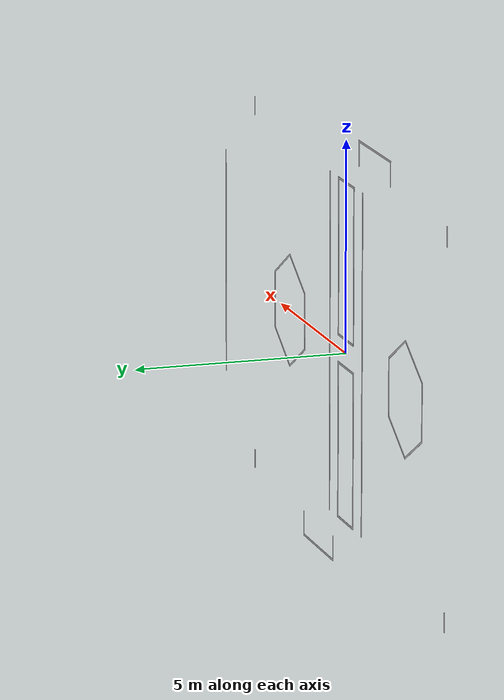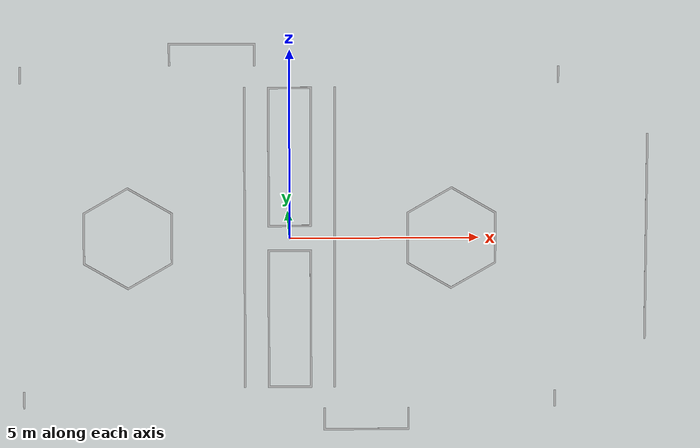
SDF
<?xml version="1.0" encoding="utf-8"?>
<sdf version="1.5">
  <model name="Carpet">
    <pose>0 0 0 0 0 0</pose>
    <link name="Rugs">
      <gravity>1</gravity>
      <self_collide>0</self_collide>
      <pose>0 -0.00231262304582918 3.61551875598679E-05 0 0 0</pose>
      <must_be_base_link>1</must_be_base_link>
      <velocity_decay>
        <linear>0</linear>
        <angular>0</angular>
      </velocity_decay>
      <inertial>
        <mass>1</mass>
        <pose>-6.16297582203915E-33 0 -4.74338450462408E-20 0 0 0</pose>
      </inertial>
      <visual name="Rugs_visual">
        <pose>3.6621838711529E-17 0.00231262304561833 -3.61551875577584E-05 0 0 0</pose>
        <material>
          <ambient>0.752941176470588 0.752941176470588 0.752941176470588 1</ambient>
          <diffuse>0.752941176470588 0.752941176470588 0.752941176470588 1</diffuse>
        </material>
        <geometry>
          <mesh>
            <scale>1 1 1</scale>
            <uri>model://Carpet/meshes/Rugs.STL</uri>
          </mesh>
        </geometry>
      </visual>
    </link>
    <joint name="Rugs-World" type="fixed">
      <parent>world</parent>
      <child>Rugs</child>
   </joint>
  </model>
</sdf>
